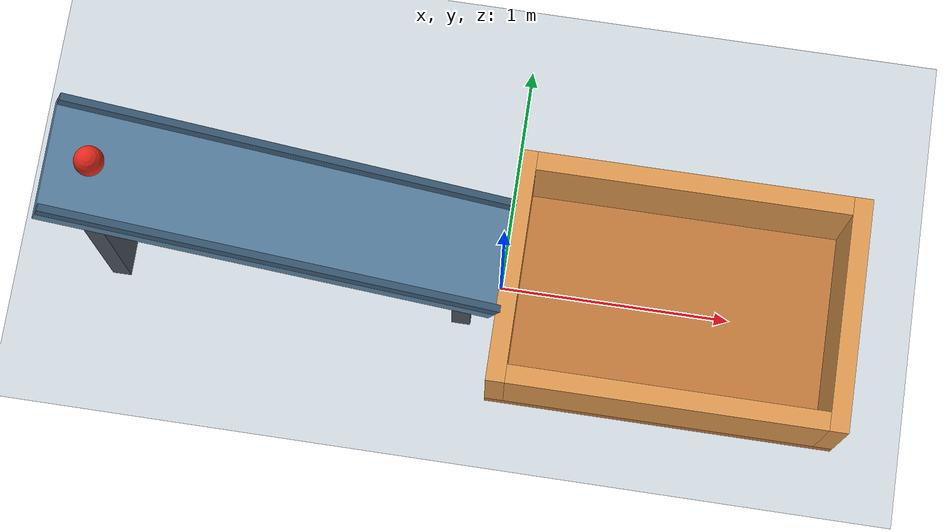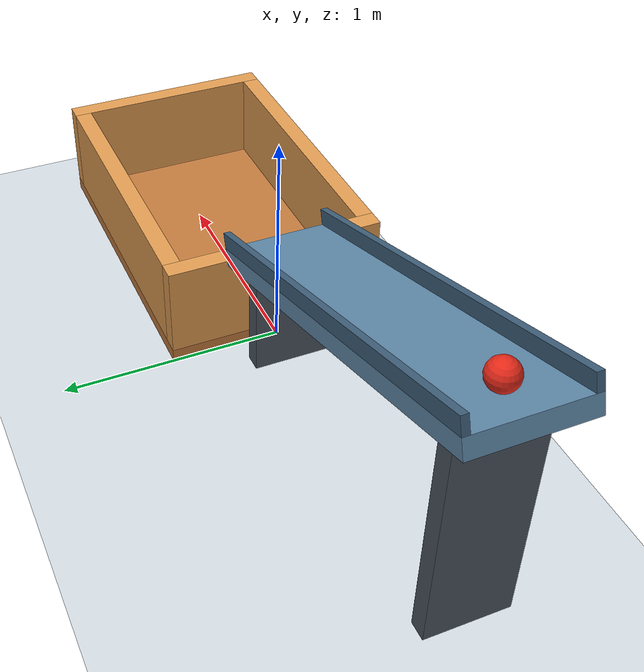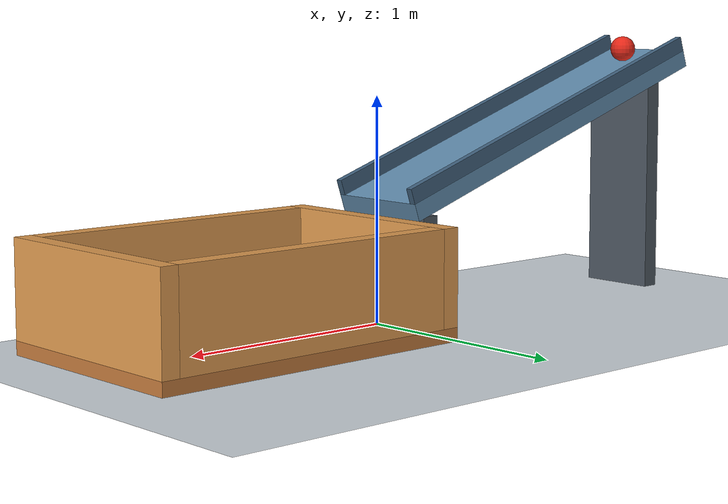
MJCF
<mujoco model="ball_rolls_into_cup">
  <compiler angle="degree"/>
  <option timestep="0.002" gravity="0 0 -9.81" integrator="implicitfast" cone="elliptic" iterations="80"/>
  <size njmax="500" nconmax="100"/>

  <visual>
    <headlight ambient="0.35 0.35 0.35" diffuse="0.65 0.65 0.65" specular="0.2 0.2 0.2"/>
    <rgba haze="0.85 0.9 0.95 1"/>
  </visual>

  <worldbody>
    <light name="main_light" pos="-1 -2 4" dir="0.2 0.3 -1" directional="true"/>
    <camera name="overview" pos="0 -4.3 2.8" xyaxes="1 0 0 0 0.487 0.873" fovy="50"/>

    <geom name="floor" type="plane" pos="0 0 0" size="4 3 0.1" rgba="0.83 0.86 0.89 1" friction="0.8 0.005 0.001"/>

    <body name="ramp">
      <geom name="ramp_deck" type="box" pos="-0.912649 0 0.812053" euler="0 18.434949 0" size="0.948683 0.24 0.04" rgba="0.38 0.55 0.68 1" condim="3" friction="0.7 0.003 0.0001" solref="0.015 1" solimp="0.95 0.99 0.001"/>
      <geom name="ramp_rail_left" type="box" pos="-0.888932 0.225 0.883204" euler="0 18.434949 0" size="0.948683 0.015 0.035" rgba="0.25 0.38 0.49 1" condim="3" friction="0.7 0.003 0.0001"/>
      <geom name="ramp_rail_right" type="box" pos="-0.888932 -0.225 0.883204" euler="0 18.434949 0" size="0.948683 0.015 0.035" rgba="0.25 0.38 0.49 1" condim="3" friction="0.7 0.003 0.0001"/>
      <geom name="ramp_support_high" type="box" pos="-1.65 0 0.5" size="0.04 0.18 0.5" rgba="0.3 0.34 0.38 1"/>
      <geom name="ramp_support_low" type="box" pos="-0.15 0 0.24" size="0.04 0.18 0.24" rgba="0.3 0.34 0.38 1"/>
    </body>

    <body name="cup" pos="0.75 0 0">
      <geom name="cup_bottom" type="box" pos="0 0 0.03" size="0.75 0.5 0.03" rgba="0.76 0.48 0.24 1" condim="6" friction="1 0.02 0.035" solref="0.015 1" solimp="0.95 0.99 0.001"/>
      <geom name="cup_wall_entry" type="box" pos="-0.71 0 0.27" size="0.04 0.5 0.21" rgba="0.88 0.61 0.32 1" condim="6" friction="1 0.02 0.035" solref="0.015 1" solimp="0.95 0.99 0.001"/>
      <geom name="cup_wall_far" type="box" pos="0.71 0 0.27" size="0.04 0.5 0.21" rgba="0.88 0.61 0.32 1" condim="6" friction="1 0.02 0.035" solref="0.015 1" solimp="0.95 0.99 0.001"/>
      <geom name="cup_wall_left" type="box" pos="0 0.46 0.27" size="0.67 0.04 0.21" rgba="0.88 0.61 0.32 1" condim="6" friction="1 0.02 0.035" solref="0.015 1" solimp="0.95 0.99 0.001"/>
      <geom name="cup_wall_right" type="box" pos="0 -0.46 0.27" size="0.67 0.04 0.21" rgba="0.88 0.61 0.32 1" condim="6" friction="1 0.02 0.035" solref="0.015 1" solimp="0.95 0.99 0.001"/>
    </body>

    <body name="ball" pos="-1.631026 0 1.156921">
      <freejoint name="ball_free"/>
      <geom name="ball" type="sphere" size="0.06" mass="0.12" rgba="0.9 0.16 0.1 1" condim="3" friction="0.7 0.003 0.0001" solref="0.015 1" solimp="0.95 0.99 0.001"/>
    </body>
  </worldbody>

  <keyframe>
    <key name="start" time="0" qpos="-1.631026 0 1.156921 1 0 0 0" qvel="0 0 0 0 0 0"/>
  </keyframe>
</mujoco>
